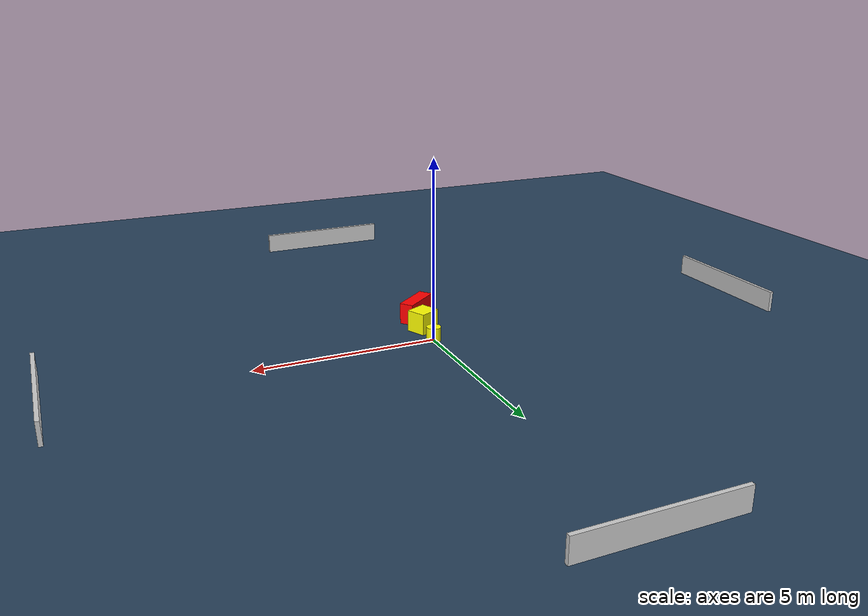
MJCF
<?xml version="1.0" ?>
<mujoco model="generated_environment">
  <option timestep="0.01" integrator="RK4" cone="elliptic"/>
  <default>
    <geom density="1"/>
  </default>
  <asset>
    <texture builtin="gradient" height="3072" name="skybox" rgb1="0.3 0.5 0.7" rgb2="0 0 0" type="skybox" width="512"/>
    <texture builtin="checker" height="300" name="groundplane" rgb1="0.2 0.3 0.4" rgb2="0.1 0.2 0.3" type="2d" width="300"/>
    <material name="groundplane" reflectance="0.2" texrepeat="5 5" texture="groundplane"/>
  </asset>
  <worldbody>
    <light dir="0 0 -1" directional="true" pos="0 0 1.5"/>
    <geom condim="3" friction="0.5 0.005 0.001" material="groundplane" name="floor" pos="0 0 0" size="0 0 0.05" type="plane"/>
    <body name="walls">
      <geom name="wall_1" condim="4" pos="-10.0 0.0 0.3" rgba="0.800000011920929 0.800000011920929 0.800000011920929 1.0" size="0.05 2.0 0.3" type="box"/>
      <geom name="wall_2" condim="4" pos="10.0 0.0 0.3" rgba="0.800000011920929 0.800000011920929 0.800000011920929 1.0" size="0.05 2.0 0.3" type="box"/>
      <geom name="wall_3" condim="4" pos="0.0 -10.0 0.3" rgba="0.800000011920929 0.800000011920929 0.800000011920929 1.0" size="2.0 0.05 0.3" type="box"/>
      <geom name="wall_4" condim="4" pos="0.0 10.0 0.3" rgba="0.800000011920929 0.800000011920929 0.800000011920929 1.0" size="2.0 0.05 0.3" type="box"/>
    </body>
    <body name="robot">
      <joint name="joint_x" type="slide" pos="0 0 0" axis="1 0 0"/>
      <joint name="joint_y" type="slide" pos="0 0 0" axis="0 1 0"/>
      <geom name="robot" type="cylinder" pos="0.0 0.0 0.2" size="0.2 0.2 0.0" mass="5.0" friction="1.0 0.005 0.0001" condim="4" rgba="1.0 1.0 0.0 1.0"/>
    </body>
    <body name="obstacle_1_movable">
      <geom name="obstacle_1_movable" condim="4" pos="-0.040149376336834956 -0.8216374028522447 0.3" euler="0 0 115.39936869510717" friction="0.0 0.005 0.001" rgba="1.0 1.0 0.0 1.0" size="0.2861237728057987 0.3123135723575754 0.3" type="box" mass="0.1"/>
      <joint type="free"/>
    </body>
    <body name="obstacle_2_static">
      <geom name="obstacle_2_static" condim="4" pos="-0.23483088567324673 -1.7675914581782095 0.3" euler="0 0 128.48049860330295" friction="0.0 0.005 0.001" rgba="1.0 0.0 0.0 1.0" size="0.20050369599313284 0.5885850853204726 0.3" type="box"/>
    </body>
  </worldbody>
  <actuator>
    <motor name="actuator_x" joint="joint_x" gear="1" ctrlrange="-1 1"/>
    <motor name="actuator_y" joint="joint_y" gear="1" ctrlrange="-1 1"/>
  </actuator>
</mujoco>
